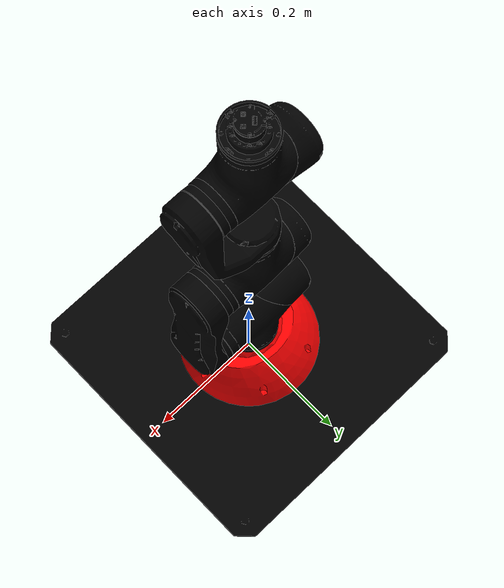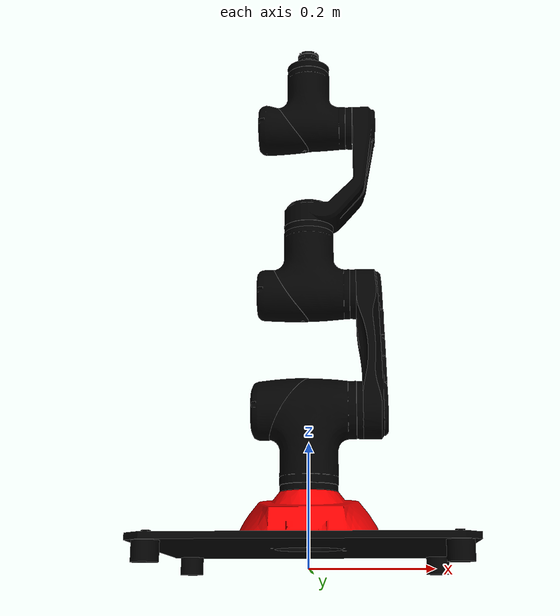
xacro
<?xml version="1.0"?>
<robot xmlns:xacro="http://ros.org/wiki/xacro"
       name="mara" >

  <!-- common stuff -->
  <xacro:include filename="$(find mara_description)/urdf/mara_gazebo.urdf.xacro" />

  <!-- mara -->
  <xacro:include filename="$(find mara_description)/urdf/mara.urdf.xacro" />

  <!-- arm -->
  <xacro:mara_robot prefix="" ee_link_distance="0.0" MAC1="_000000000001" MAC2="_000000000002" MAC3="_000000000003"/>

  <link name="world" />

  <joint name="world_to_base_joint" type="fixed">
    <origin rpy="0 0 0" xyz="0 0 0"/>
    <parent link="world"/>
    <child link="base_link"/>
  </joint>
</robot>

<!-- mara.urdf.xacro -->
<robot xmlns:xacro="http://ros.org/wiki/xacro">

<!--
  Author: Alejandro  Hernandez
-->

  <xacro:include filename="$(find mara_description)/urdf/mara.transmission.xacro" />
  <xacro:include filename="$(find mara_description)/urdf/mara_gazebo.urdf.xacro" />

  <xacro:macro name="mara_robot"  params="prefix ee_link_distance MAC1 MAC2 MAC3">

    <link name="${prefix}base_link">
      <inertial>
        <origin rpy="0 0 0" xyz="8.625E-08 -4.6583E-06 0.03145"/>
        <mass value="7.033"/>
        <inertia ixx="0.1478344" ixy="-0.00001" ixz="0.0" iyy="0.14782335" iyz="0.0" izz="0.29471799"/>
      </inertial>
      <visual>
        <origin rpy="0 0 0" xyz="0 0 0"/>
        <geometry>
          <mesh filename="package://mara_description/meshes/Base_plancha.dae" scale="0.001 0.001 0.001"/>
        </geometry>
        <material name="Gazebo/Grey">
          <color rgba="0. 0. 0. 1"/>
        </material>
      </visual>
      <collision>
        <origin rpy="0 0 0" xyz="0 0 0"/>
        <geometry>
          <mesh filename="package://mara_description/meshes/Base_plancha.dae" scale="0.001 0.001 0.001"/>
        </geometry>
      </collision>
    </link>
    <gazebo reference="${prefix}base_link">
      <material>Gazebo/Grey</material>
      <selfCollide>True</selfCollide>
    </gazebo>

    <link name="${prefix}base_robot">
      <inertial>
        <origin rpy="0 0 0" xyz="8.625E-08 -4.6583E-06 0.03145"/>
        <mass value="7.033"/>
        <inertia ixx="0.1478344" ixy="0.00001" ixz="0.0" iyy="0.14782335" iyz="0.0" izz="0.29471799"/>
      </inertial>
      <visual>
        <origin rpy="0 0 0" xyz="0 0 0"/>
        <geometry>
          <mesh filename="package://mara_description/meshes/Base.dae" scale="0.001 0.001 0.001"/>
        </geometry>
        <material name="Gazebo/Black">
          <color rgba="1. 0. 0. 1.0"/>
        </material>
      </visual>
      <collision>
        <origin rpy="0 0 0" xyz="0 0 0"/>
        <geometry>
          <mesh filename="package://mara_description/meshes/Base.dae" scale="0.001 0.001 0.001"/>
        </geometry>
      </collision>
    </link>
    <gazebo reference="${prefix}base_robot">
      <material>Gazebo/Black</material>
      <selfCollide>True</selfCollide>
    </gazebo>

    <link name="${prefix}motor1_link">
      <inertial>
        <origin rpy="0 0 0" xyz="0.02066 0 0.12051"/>
        <mass value="5.6"/>
        <inertia ixx="0.0200769278" ixy="-7.72273E-006" ixz="-0.0050158708" iyy="0.0257088151" iyz="5.49229E-006" izz="0.0120821377"/>
      </inertial>
      <visual>
        <origin rpy="0 0 0" xyz="0 0 0"/>
        <geometry>
          <mesh filename="package://mara_description/meshes/MARA_T49.dae" scale="0.001 0.001 0.001"/>
        </geometry>
        <material name="Gazebo/White">
          <color rgba="0. 0. 0. 1"/>
        </material>
      </visual>
      <collision>
        <origin rpy="0 0 0" xyz="0 0 0"/>
        <geometry>
          <mesh filename="package://mara_description/meshes/MARA_T49.dae" scale="0.001 0.001 0.001"/>
        </geometry>
      </collision>
    </link>
    <gazebo reference="${prefix}motor1_link">
      <material>Gazebo/White</material>
      <selfCollide>True</selfCollide>
    </gazebo>

    <link name="${prefix}motor1_cover">
      <inertial>
        <origin rpy="0 0 0" xyz="0 0 0"/>
        <mass value="0.0"/>
        <inertia ixx="0.0" ixy="0.0" ixz="0.0" iyy="0.0" iyz="0.0" izz="0.0"/>
      </inertial>
      <visual>
        <origin rpy="0 0 0" xyz="0 0 0"/>
        <geometry>
          <mesh filename="package://mara_description/meshes/MARA_T49_Black.dae" scale="0.001 0.001 0.001"/>
        </geometry>
        <material name="Gazebo/Black">
          <color rgba="0. 0. 0. 1"/>
        </material>
      </visual>
      <collision>
        <origin rpy="0 0 0" xyz="0 0 0"/>
        <geometry>
          <mesh filename="package://mara_description/meshes/MARA_T49_Black.dae" scale="0.001 0.001 0.001"/>
        </geometry>
      </collision>
    </link>
    <gazebo reference="${prefix}motor1_cover">
      <material>Gazebo/Black</material>
      <selfCollide>True</selfCollide>
    </gazebo>

    <link name="${prefix}motor2_link">
      <inertial>
        <origin rpy="0 0 0" xyz="-0.01665 0.0 0.09639"/>
        <mass value="1.24"/>
        <inertia ixx="0.0079614839" ixy="0.000000037" ixz="0.0003203013" iyy="0.007135338" iyz="-0.000001062" izz="0.001111114"/>
      </inertial>
      <visual>
        <origin rpy="0 0 0" xyz="0 0 0"/>
        <geometry>
          <mesh filename="package://mara_description/meshes/MARA_Link1.dae" scale="0.001 0.001 0.001"/>
        </geometry>
        <material name="Gazebo/Black">
          <color rgba="0. 0. 0. 1"/>
        </material>
      </visual>
      <collision>
        <origin rpy="0 0 0" xyz="0 0 0"/>
        <geometry>
          <mesh filename="package://mara_description/meshes/MARA_Link1.dae" scale="0.001 0.001 0.001"/>
        </geometry>
      </collision>
    </link>
    <gazebo reference="${prefix}motor2_link">
      <material>Gazebo/Black</material>
      <selfCollide>True</selfCollide>
    </gazebo>

    <link name="${prefix}motor3_link">
      <inertial>
        <origin rpy="0 0 0" xyz="-0.08963 0 0.0403"/>
        <mass value="3.95"/>
        <inertia ixx="0.0115136615" ixy="-1.231046E-005" ixz="0.003148516" iyy="0.0149841676" iyz="-8.81378E-006" izz="0.0070387807"/>
      </inertial>
      <visual>
        <origin rpy="0 0 0" xyz="0 0 0"/>
        <geometry>
          <mesh filename="package://mara_description/meshes/MARA_T30.dae" scale="0.001 0.001 0.001"/>
        </geometry>
        <material name="Gazebo/White">
          <color rgba="0. 0. 0. 1"/>
        </material>
      </visual>
      <collision>
        <origin rpy="0 0 0" xyz="0 0 0"/>
        <geometry>
          <mesh filename="package://mara_description/meshes/MARA_T30.dae" scale="0.001 0.001 0.001"/>
        </geometry>
      </collision>
    </link>
    <gazebo reference="${prefix}motor3_link">
      <material>Gazebo/White</material>
      <selfCollide>True</selfCollide>
    </gazebo>

    <link name="${prefix}motor3_cover">
      <inertial>
        <origin rpy="0 0 0" xyz="0 0 0"/>
        <mass value="0.0"/>
        <inertia ixx="0.0" ixy="0.0" ixz="0.0" iyy="0.0" iyz="0.0" izz="0.0"/>
      </inertial>
      <visual>
        <origin rpy="0 0 0" xyz="0 0 0"/>
        <geometry>
          <mesh filename="package://mara_description/meshes/MARA_T30_Black.dae" scale="0.001 0.001 0.001"/>
        </geometry>
        <material name="Gazebo/Black">
          <color rgba="0. 0. 0. 1"/>
        </material>
      </visual>
      <collision>
        <origin rpy="0 0 0" xyz="0 0 0"/>
        <geometry>
          <mesh filename="package://mara_description/meshes/MARA_T30_Black.dae" scale="0.001 0.001 0.001"/>
        </geometry>
      </collision>
    </link>
    <gazebo reference="${prefix}motor3_cover">
      <material>Gazebo/Black</material>
      <selfCollide>True</selfCollide>
    </gazebo>

    <link name="${prefix}motor4_link">
      <inertial>
        <origin rpy="0 0 0" xyz="0.06357 0.0 0.05698"/>
        <mass value="1.26"/>
        <inertia ixx="0.005919676" ixy="0.000000923" ixz="-0.0022280208" iyy="0.0068807393" iyz="6.1373E-007" izz="0.00257485"/>
      </inertial>
      <visual>
        <origin rpy="0 0 0" xyz="0 0 0"/>
        <geometry>
          <mesh filename="package://mara_description/meshes/MARA_Link2.dae" scale="0.001 0.001 0.001"/>
        </geometry>
        <material name="Gazebo/Black">
          <color rgba="0. 0. 0. 1"/>
        </material>
      </visual>
      <collision>
        <origin rpy="0 0 0" xyz="0 0 0"/>
        <geometry>
          <mesh filename="package://mara_description/meshes/MARA_Link2.dae" scale="0.001 0.001 0.001"/>
        </geometry>
      </collision>
    </link>
    <gazebo reference="${prefix}motor4_link">
      <material>Gazebo/Black</material>
      <selfCollide>True</selfCollide>
    </gazebo>

    <link name="${prefix}motor5_link">
      <inertial>
        <origin rpy="0 0 0" xyz="-0.09105 0.0 0.03676"/>
        <mass value="2.85"/>
        <inertia ixx="0.0072829492" ixy="3.77994E-006" ixz="0.0015682105" iyy="0.0098263499" iyz="2.52745E-006" izz="0.0045615321"/>
      </inertial>
      <visual>
        <origin rpy="0 0 0" xyz="0 0 0"/>
        <geometry>
          <mesh filename="package://mara_description/meshes/MARA_T5.4.dae" scale="0.001 0.001 0.001"/>
        </geometry>
        <material name="Gazebo/White">
          <color rgba="0. 0. 0. 1"/>
        </material>
      </visual>
      <collision>
        <origin rpy="0 0 0" xyz="0 0 0"/>
        <geometry>
          <mesh filename="package://mara_description/meshes/MARA_T5.4.dae" scale="0.001 0.001 0.001"/>
        </geometry>
      </collision>
    </link>
    <gazebo reference="${prefix}motor5_link">
      <material>Gazebo/White</material>
      <selfCollide>True</selfCollide>
    </gazebo>

    <link name="${prefix}motor5_cover">
      <inertial>
        <origin rpy="0 0 0" xyz="0 0 0"/>
        <mass value="0.0"/>
        <inertia ixx="0.0" ixy="0.0" ixz="0.0" iyy="0.0" iyz="0.0" izz="0.0"/>
      </inertial>
      <visual>
        <origin rpy="0 0 0" xyz="0 0 0"/>
        <geometry>
          <mesh filename="package://mara_description/meshes/MARA_T5.4_black.dae" scale="0.001 0.001 0.001"/>
        </geometry>
        <material name="Gazebo/Black">
          <color rgba="0. 0. 0. 1"/>
        </material>
      </visual>
      <collision>
        <origin rpy="0 0 0" xyz="0 0 0"/>
        <geometry>
          <mesh filename="package://mara_description/meshes/MARA_T5.4_black.dae" scale="0.001 0.001 0.001"/>
        </geometry>
      </collision>
    </link>
    <gazebo reference="${prefix}motor5_cover">
      <material>Gazebo/Black</material>
      <selfCollide>True</selfCollide>
    </gazebo>

    <!-- dummy link with the required tags-->
    <link name="${prefix}motor6_link">
      <inertial>
        <origin rpy="0 0 0" xyz="0 0 0"/>
        <mass value="0.00001"/>
        <inertia ixx="0" ixy="0" ixz="0" iyy="0" iyz="0" izz="0"/>
      </inertial>
      <visual>
        <origin rpy="0 0 0" xyz="0 0 0"/>
        <geometry>
          <sphere radius="0"/>
        </geometry>
      </visual>
      <collision>
        <origin rpy="0 0 0" xyz="0 0 0"/>
        <geometry>
          <sphere radius="0"/>
        </geometry>
      </collision>
    </link>

    <link name="${prefix}ee_link"/>

    <joint name="${prefix}joint_bases" type="fixed">
      <origin rpy="0 0 0" xyz="0 0 0.04"/>
      <parent link="${prefix}base_link"/>
      <child link="${prefix}base_robot"/>
    </joint>

    <joint name="${prefix}motor1" type="revolute">
      <origin rpy="0 0 0" xyz="0 0 0.05122"/>
      <parent link="${prefix}base_robot"/>
      <child link="${prefix}motor1_link"/>
      <axis xyz="0 0 1"/>
      <limit effort="104.0" lower="-3.1416" upper="3.1416" velocity="1.57"/>
      <dynamics damping="0" friction="0"/>
    </joint>

    <joint name="${prefix}motor1_cover_joint" type="fixed">
      <origin rpy="0 0 0" xyz="0 0 0.0"/>
      <parent link="${prefix}motor1_link"/>
      <child link="${prefix}motor1_cover"/>
    </joint>

    <joint name="${prefix}motor2" type="revolute">
      <origin rpy="0 0 0" xyz="0.118 0 0.1637"/>
      <parent link="${prefix}motor1_link"/>
      <child link="${prefix}motor2_link"/>
      <axis xyz="1 0 0"/>
      <limit effort="104.0" lower="-2.35" upper="2.35" velocity="1.57"/>
      <dynamics damping="0" friction="0"/>
    </joint>

    <joint name="${prefix}motor3" type="revolute">
      <origin rpy="0 0 0" xyz="-0.009 0 0.2"/>
      <parent link="${prefix}motor2_link"/>
      <child link="${prefix}motor3_link"/>
      <axis xyz="-1 0 0"/>
      <limit effort="69" lower="-2.61" upper="2.61" velocity="1.57"/>
      <dynamics damping="0" friction="0"/>
    </joint>

    <joint name="${prefix}motor3_cover_joint" type="fixed">
      <origin rpy="0 0 0" xyz="0 0 0.0"/>
      <parent link="${prefix}motor3_link"/>
      <child link="${prefix}motor3_cover"/>
    </joint>

    <joint name="${prefix}motor4" type="revolute">
      <origin rpy="0 0 0" xyz="-0.109255 0 0.149255"/>
      <parent link="${prefix}motor3_link"/>
      <child link="${prefix}motor4_link"/>
      <axis xyz="0 0 1"/>
      <limit effort="69" lower="-3.14" upper="3.14" velocity="1.57"/>
      <dynamics damping="0" friction="0"/>
    </joint>

    <joint name="${prefix}motor5" type="revolute">
      <origin rpy="0 0 0" xyz="0.1054570 0 0.16074"/>
      <parent link="${prefix}motor4_link"/>
      <child link="${prefix}motor5_link"/>
      <axis xyz="-1 0 0"/>
      <limit effort="34" lower="-2.56" upper="2.56" velocity="1.57"/>
      <dynamics damping="0" friction="0"/>
    </joint>

    <joint name="${prefix}motor5_cover_joint" type="fixed">
      <origin rpy="0 0 0" xyz="0 0 0.0"/>
      <parent link="${prefix}motor5_link"/>
      <child link="${prefix}motor5_cover"/>
    </joint>

    <joint name="${prefix}motor6" type="revolute">
      <origin rpy="0 0 0" xyz="-0.10625569 0 0.14675569"/>
      <parent link="${prefix}motor5_link"/>
      <child link="${prefix}motor6_link"/>
      <axis xyz="0 0 1"/>
      <limit effort="34" lower="-3.14" upper="3.14" velocity="1.57"/>
      <dynamics damping="0" friction="0"/>
    </joint>

    <joint name="${prefix}ee_link" type="fixed">
      <origin rpy="0 -1.57 0" xyz="0 0.0 ${ee_link_distance}"/>
      <parent link="${prefix}motor6_link"/>
      <child link="${prefix}ee_link"/>
    </joint>

    <link name="${prefix}tool0"/>
    <joint name="${prefix}motor6_link-tool0_fixed_joint" type="fixed">
      <origin rpy="0 -1.57 0" xyz="0 0.0 ${ee_link_distance}"/>
      <parent link="${prefix}motor6_link"/>
      <child link="${prefix}tool0"/>
    </joint>

    <xacro:mara_transmission prefix="${prefix}"/>
    <xacro:mara_gazebo prefix="${prefix}" MAC1="${MAC1}" MAC2="${MAC2}" MAC3="${MAC3}"/>

  </xacro:macro>
</robot>
